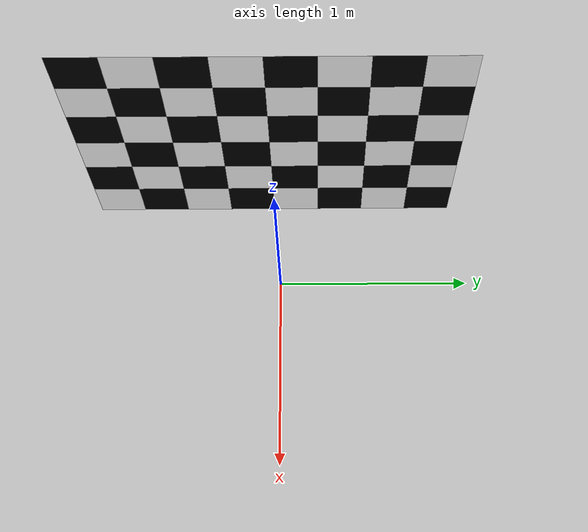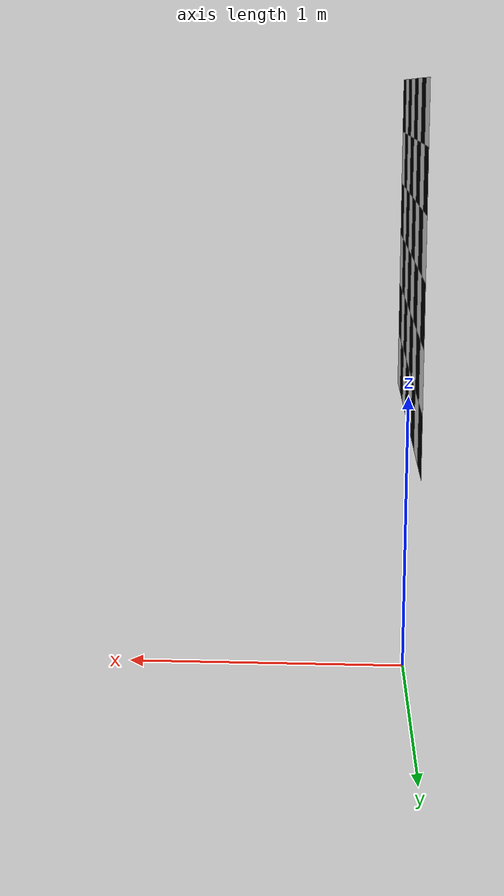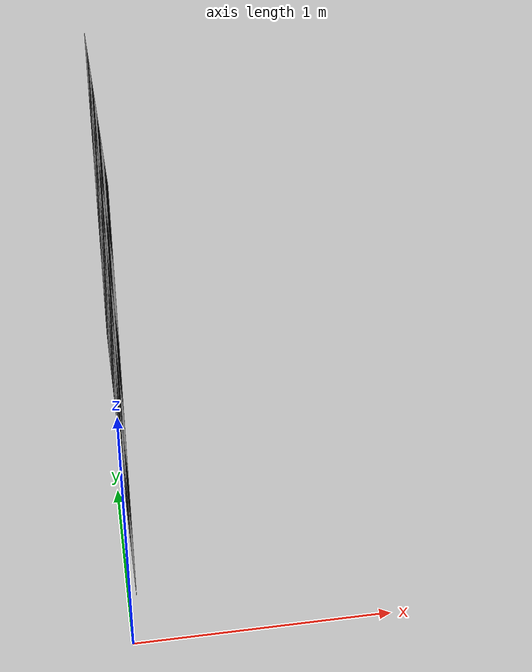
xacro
<?xml version="1.0"?>
<robot xmlns:xacro="http://www.ros.org/wiki/xacro" name="checkerboard_spawn">
  <xacro:include filename="$(find velo2cam_gazebo)/../gazebo_models/checkerboard_6_8_0_2/checkerboard.urdf.xacro"/>
  <xacro:arg name="xyz" default="0 0 1.5" />
  <xacro:arg name="rpy" default="0 1.57 0" />
  <xacro:arg name="name" default="checkerboard" />

  <gazebo>
      <static>true</static>
  </gazebo>
  <!-- Base Footprint -->
  <link name="base_footprint">
    <inertial>
      <mass value="0.0001" />
      <origin xyz="0 0 0" />
      <inertia ixx="0.0001" ixy="0.0" ixz="0.0"
          iyy="0.0001" iyz="0.0"
          izz="0.0001" />
    </inertial>
    <visual>
        <origin xyz="0 0 0" rpy="0 0 0" />
        <geometry>
            <box size="0.001 0.001 0.001" />
        </geometry>
    </visual>
  </link>

  <gazebo reference="base_footprint">
    <static>true</static>
    <turnGravityOff>false</turnGravityOff>
  </gazebo>

  <checkerboard_6_8_0_2 parent="base_footprint" name="$(arg name)">
    <origin xyz="$(arg xyz)" rpy="$(arg rpy)"/>
  </checkerboard_6_8_0_2>
</robot>

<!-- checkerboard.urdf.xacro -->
<robot xmlns:xacro="http://www.ros.org/wiki/xacro" name="checkerboard_6_8_0_2">
  <xacro:include filename="$(find velo2cam_gazebo)/../gazebo_models/checkerboard_6_8_0_2/materials.xacro"/>
  <xacro:macro name="checkerboard_6_8_0_2" params="parent name *origin">
   <!-- Base Link -->
    <joint name="${name}_base_mount_joint" type="fixed">
      <xacro:insert_block name="origin" />
      <parent link="${parent}"/>
      <child link="${name}_link"/>
    </joint>

    <link name="${name}_link">
      <inertial>
        <mass value="0.1"/>
        <origin xyz="0 0 0" rpy="0 0 0"/>
        <inertia ixx="1e-6" ixy="0" ixz="0" iyy="1e-6" iyz="0" izz="1e-6" />
      </inertial>
      <collision name="collision">
        <geometry>
          <box size="1.2 1.6 0.0001"/>
        </geometry>
      </collision>
      <visual name="checker_0_0">
        <origin xyz="-0.5 -0.7 0" rpy="0 0 0"/>
        <geometry>
          <box size="0.2 0.2 0.0002" />
        </geometry>
        <material name="">
					<color rgba="0 0 0 1"/>
				</material>

      </visual>
      <visual name="checker_0_1">
        <origin xyz="-0.5 -0.5 0" rpy="0 0 0"/>
        <geometry>
          <box size="0.2 0.2 0.0002" />
        </geometry>
        <material name="white"/>

      </visual>
      <visual name="checker_0_2">
        <origin xyz="-0.5 -0.3 0" rpy="0 0 0"/>
        <geometry>
          <box size="0.2 0.2 0.0002" />
        </geometry>
        <material name="">
					<color rgba="0 0 0 1"/>
				</material>

      </visual>
      <visual name="checker_0_3">
        <origin xyz="-0.5 -0.1 0" rpy="0 0 0"/>
        <geometry>
          <box size="0.2 0.2 0.0002" />
        </geometry>
        <material name="">
					<color rgba="1 1 1 1"/>
				</material>

      </visual>
      <visual name="checker_0_4">
        <origin xyz="-0.5 0.1 0" rpy="0 0 0"/>
        <geometry>
          <box size="0.2 0.2 0.0002" />
        </geometry>
        <material name="">
					<color rgba="0 0 0 1"/>
				</material>

      </visual>
      <visual name="checker_0_5">
        <origin xyz="-0.5 0.3 0" rpy="0 0 0"/>
        <geometry>
          <box size="0.2 0.2 0.0002" />
        </geometry>
        <material name="">
					<color rgba="1 1 1 1"/>
				</material>

      </visual>
      <visual name="checker_0_6">
        <origin xyz="-0.5 0.5 0" rpy="0 0 0"/>
        <geometry>
          <box size="0.2 0.2 0.0002" />
        </geometry>
        <material name="">
					<color rgba="0 0 0 1"/>
				</material>

      </visual>
      <visual name="checker_0_7">
        <origin xyz="-0.5 0.7 0" rpy="0 0 0"/>
        <geometry>
          <box size="0.2 0.2 0.0002" />
        </geometry>
        <material name="">
					<color rgba="1 1 1 1"/>
				</material>

      </visual>
      <visual name="checker_1_0">
        <origin xyz="-0.3 -0.7 0" rpy="0 0 0"/>
        <geometry>
          <box size="0.2 0.2 0.0002" />
        </geometry>
        <material name="">
					<color rgba="1 1 1 1"/>
				</material>

      </visual>
      <visual name="checker_1_1">
        <origin xyz="-0.3 -0.5 0" rpy="0 0 0"/>
        <geometry>
          <box size="0.2 0.2 0.0002" />
        </geometry>
        <material name="">
					<color rgba="0 0 0 1"/>
				</material>

      </visual>
      <visual name="checker_1_2">
        <origin xyz="-0.3 -0.3 0" rpy="0 0 0"/>
        <geometry>
          <box size="0.2 0.2 0.0002" />
        </geometry>
        <material name="">
					<color rgba="1 1 1 1"/>
				</material>

      </visual>
      <visual name="checker_1_3">
        <origin xyz="-0.3 -0.1 0" rpy="0 0 0"/>
        <geometry>
          <box size="0.2 0.2 0.0002" />
        </geometry>
        <material name="">
					<color rgba="0 0 0 1"/>
				</material>

      </visual>
      <visual name="checker_1_4">
        <origin xyz="-0.3 0.1 0" rpy="0 0 0"/>
        <geometry>
          <box size="0.2 0.2 0.0002" />
        </geometry>
        <material name="">
					<color rgba="1 1 1 1"/>
				</material>

      </visual>
      <visual name="checker_1_5">
        <origin xyz="-0.3 0.3 0" rpy="0 0 0"/>
        <geometry>
          <box size="0.2 0.2 0.0002" />
        </geometry>
        <material name="">
					<color rgba="0 0 0 1"/>
				</material>

      </visual>
      <visual name="checker_1_6">
        <origin xyz="-0.3 0.5 0" rpy="0 0 0"/>
        <geometry>
          <box size="0.2 0.2 0.0002" />
        </geometry>
        <material name="">
					<color rgba="1 1 1 1"/>
				</material>

      </visual>
      <visual name="checker_1_7">
        <origin xyz="-0.3 0.7 0" rpy="0 0 0"/>
        <geometry>
          <box size="0.2 0.2 0.0002" />
        </geometry>
        <material name="">
					<color rgba="0 0 0 1"/>
				</material>

      </visual>
      <visual name="checker_2_0">
        <origin xyz="-0.1 -0.7 0" rpy="0 0 0"/>
        <geometry>
          <box size="0.2 0.2 0.0002" />
        </geometry>
        <material name="">
					<color rgba="0 0 0 1"/>
				</material>

      </visual>
      <visual name="checker_2_1">
        <origin xyz="-0.1 -0.5 0" rpy="0 0 0"/>
        <geometry>
          <box size="0.2 0.2 0.0002" />
        </geometry>
        <material name="">
					<color rgba="1 1 1 1"/>
				</material>

      </visual>
      <visual name="checker_2_2">
        <origin xyz="-0.1 -0.3 0" rpy="0 0 0"/>
        <geometry>
          <box size="0.2 0.2 0.0002" />
        </geometry>
        <material name="">
					<color rgba="0 0 0 1"/>
				</material>

      </visual>
      <visual name="checker_2_3">
        <origin xyz="-0.1 -0.1 0" rpy="0 0 0"/>
        <geometry>
          <box size="0.2 0.2 0.0002" />
        </geometry>
        <material name="">
					<color rgba="1 1 1 1"/>
				</material>

      </visual>
      <visual name="checker_2_4">
        <origin xyz="-0.1 0.1 0" rpy="0 0 0"/>
        <geometry>
          <box size="0.2 0.2 0.0002" />
        </geometry>
        <material name="">
					<color rgba="0 0 0 1"/>
				</material>

      </visual>
      <visual name="checker_2_5">
        <origin xyz="-0.1 0.3 0" rpy="0 0 0"/>
        <geometry>
          <box size="0.2 0.2 0.0002" />
        </geometry>
        <material name="">
					<color rgba="1 1 1 1"/>
				</material>

      </visual>
      <visual name="checker_2_6">
        <origin xyz="-0.1 0.5 0" rpy="0 0 0"/>
        <geometry>
          <box size="0.2 0.2 0.0002" />
        </geometry>
        <material name="">
					<color rgba="0 0 0 1"/>
				</material>

      </visual>
      <visual name="checker_2_7">
        <origin xyz="-0.1 0.7 0" rpy="0 0 0"/>
        <geometry>
          <box size="0.2 0.2 0.0002" />
        </geometry>
        <material name="">
					<color rgba="1 1 1 1"/>
				</material>

      </visual>
      <visual name="checker_3_0">
        <origin xyz="0.1 -0.7 0" rpy="0 0 0"/>
        <geometry>
          <box size="0.2 0.2 0.0002" />
        </geometry>
        <material name="">
					<color rgba="1 1 1 1"/>
				</material>

      </visual>
      <visual name="checker_3_1">
        <origin xyz="0.1 -0.5 0" rpy="0 0 0"/>
        <geometry>
          <box size="0.2 0.2 0.0002" />
        </geometry>
        <material name="">
					<color rgba="0 0 0 1"/>
				</material>

      </visual>
      <visual name="checker_3_2">
        <origin xyz="0.1 -0.3 0" rpy="0 0 0"/>
        <geometry>
          <box size="0.2 0.2 0.0002" />
        </geometry>
        <material name="">
					<color rgba="1 1 1 1"/>
				</material>

      </visual>
      <visual name="checker_3_3">
        <origin xyz="0.1 -0.1 0" rpy="0 0 0"/>
        <geometry>
          <box size="0.2 0.2 0.0002" />
        </geometry>
        <material name="">
					<color rgba="0 0 0 1"/>
				</material>

      </visual>
      <visual name="checker_3_4">
        <origin xyz="0.1 0.1 0" rpy="0 0 0"/>
        <geometry>
          <box size="0.2 0.2 0.0002" />
        </geometry>
        <material name="">
					<color rgba="1 1 1 1"/>
				</material>

      </visual>
      <visual name="checker_3_5">
        <origin xyz="0.1 0.3 0" rpy="0 0 0"/>
        <geometry>
          <box size="0.2 0.2 0.0002" />
        </geometry>
        <material name="">
					<color rgba="0 0 0 1"/>
				</material>

      </visual>
      <visual name="checker_3_6">
        <origin xyz="0.1 0.5 0" rpy="0 0 0"/>
        <geometry>
          <box size="0.2 0.2 0.0002" />
        </geometry>
        <material name="">
					<color rgba="1 1 1 1"/>
				</material>

      </visual>
      <visual name="checker_3_7">
        <origin xyz="0.1 0.7 0" rpy="0 0 0"/>
        <geometry>
          <box size="0.2 0.2 0.0002" />
        </geometry>
        <material name="">
					<color rgba="0 0 0 1"/>
				</material>

      </visual>
      <visual name="checker_4_0">
        <origin xyz="0.3 -0.7 0" rpy="0 0 0"/>
        <geometry>
          <box size="0.2 0.2 0.0002" />
        </geometry>
        <material name="">
					<color rgba="0 0 0 1"/>
				</material>

      </visual>
      <visual name="checker_4_1">
        <origin xyz="0.3 -0.5 0" rpy="0 0 0"/>
        <geometry>
          <box size="0.2 0.2 0.0002" />
        </geometry>
        <material name="">
					<color rgba="1 1 1 1"/>
				</material>

      </visual>
      <visual name="checker_4_2">
        <origin xyz="0.3 -0.3 0" rpy="0 0 0"/>
        <geometry>
          <box size="0.2 0.2 0.0002" />
        </geometry>
        <material name="">
					<color rgba="0 0 0 1"/>
				</material>

      </visual>
      <visual name="checker_4_3">
        <origin xyz="0.3 -0.1 0" rpy="0 0 0"/>
        <geometry>
          <box size="0.2 0.2 0.0002" />
        </geometry>
        <material name="">
					<color rgba="1 1 1 1"/>
				</material>

      </visual>
      <visual name="checker_4_4">
        <origin xyz="0.3 0.1 0" rpy="0 0 0"/>
        <geometry>
          <box size="0.2 0.2 0.0002" />
        </geometry>
        <material name="">
					<color rgba="0 0 0 1"/>
				</material>

      </visual>
      <visual name="checker_4_5">
        <origin xyz="0.3 0.3 0" rpy="0 0 0"/>
        <geometry>
          <box size="0.2 0.2 0.0002" />
        </geometry>
        <material name="">
					<color rgba="1 1 1 1"/>
				</material>

      </visual>
      <visual name="checker_4_6">
        <origin xyz="0.3 0.5 0" rpy="0 0 0"/>
        <geometry>
          <box size="0.2 0.2 0.0002" />
        </geometry>
        <material name="">
					<color rgba="0 0 0 1"/>
				</material>

      </visual>
      <visual name="checker_4_7">
        <origin xyz="0.3 0.7 0" rpy="0 0 0"/>
        <geometry>
          <box size="0.2 0.2 0.0002" />
        </geometry>
        <material name="">
					<color rgba="1 1 1 1"/>
				</material>

      </visual>
      <visual name="checker_5_0">
        <origin xyz="0.5 -0.7 0" rpy="0 0 0"/>
        <geometry>
          <box size="0.2 0.2 0.0002" />
        </geometry>
        <material name="">
					<color rgba="1 1 1 1"/>
				</material>

      </visual>
      <visual name="checker_5_1">
        <origin xyz="0.5 -0.5 0" rpy="0 0 0"/>
        <geometry>
          <box size="0.2 0.2 0.0002" />
        </geometry>
        <material name="">
					<color rgba="0 0 0 1"/>
				</material>

      </visual>
      <visual name="checker_5_2">
        <origin xyz="0.5 -0.3 0" rpy="0 0 0"/>
        <geometry>
          <box size="0.2 0.2 0.0002" />
        </geometry>
        <material name="">
					<color rgba="1 1 1 1"/>
				</material>

      </visual>
      <visual name="checker_5_3">
        <origin xyz="0.5 -0.1 0" rpy="0 0 0"/>
        <geometry>
          <box size="0.2 0.2 0.0002" />
        </geometry>
        <material name="">
					<color rgba="0 0 0 1"/>
				</material>

      </visual>
      <visual name="checker_5_4">
        <origin xyz="0.5 0.1 0" rpy="0 0 0"/>
        <geometry>
          <box size="0.2 0.2 0.0002" />
        </geometry>
        <material name="">
					<color rgba="1 1 1 1"/>
				</material>

      </visual>
      <visual name="checker_5_5">
        <origin xyz="0.5 0.3 0" rpy="0 0 0"/>
        <geometry>
          <box size="0.2 0.2 0.0002" />
        </geometry>
        <material name="">
					<color rgba="0 0 0 1"/>
				</material>

      </visual>
      <visual name="checker_5_6">
        <origin xyz="0.5 0.5 0" rpy="0 0 0"/>
        <geometry>
          <box size="0.2 0.2 0.0002" />
        </geometry>
        <material name="">
					<color rgba="1 1 1 1"/>
				</material>

      </visual>
      <visual name="checker_5_7">
        <origin xyz="0.5 0.7 0" rpy="0 0 0"/>
        <geometry>
          <box size="0.2 0.2 0.0002" />
        </geometry>
        <material name="">
					<color rgba="0 0 0 1"/>
				</material>

      </visual>
    </link>
    <gazebo reference="${name}_link">
      <static>true</static>
      <turnGravityOff>false</turnGravityOff>
    </gazebo>
  </xacro:macro>
</robot>

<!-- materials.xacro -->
<robot>
	<material name="black">
	   <color rgba="0. 0. 0. 1.0"/>
	</material>
	<material name="white">
	   <color rgba="1. 1. 1. 1.0"/>
	</material>
</robot>
